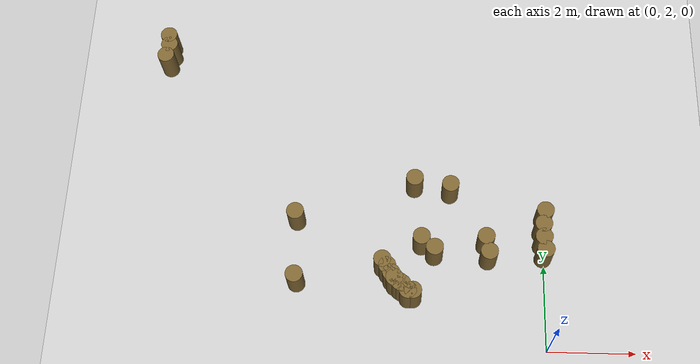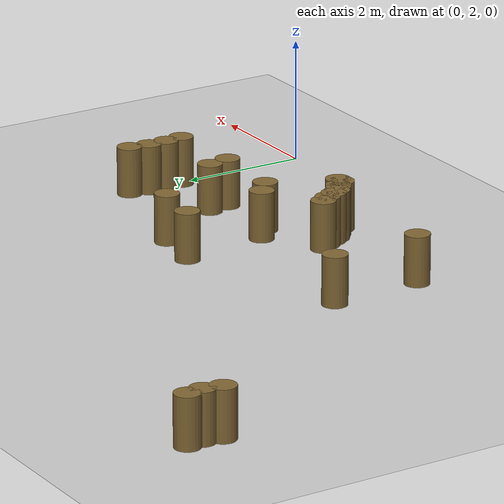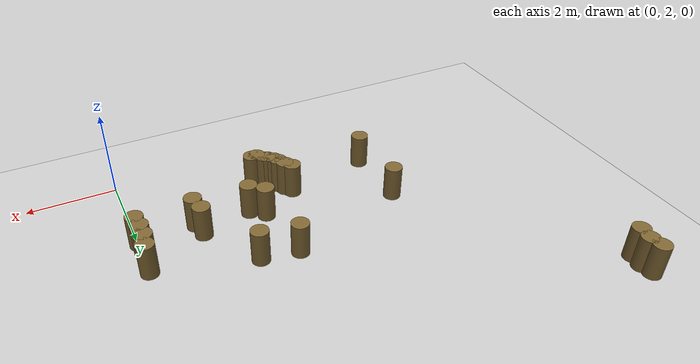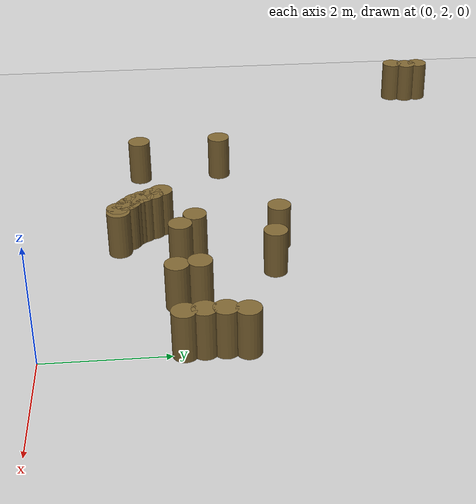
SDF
<sdf version="1.7">
 <world name="default">
  <model name="ground_plane">
   <static>1</static>
   <link name="link">
    <collision name="collision">
     <geometry><plane><normal>0 0 1</normal><size>100 100</size></plane></geometry>
     <surface><friction><ode><mu>100</mu><mu2>50</mu2></ode></friction></surface>
    </collision>
    <visual name="visual">
     <cast_shadows>0</cast_shadows>
     <geometry><plane><normal>0 0 1</normal><size>100 100</size></plane></geometry>
     <material>
      <script><uri>file://media/materials/scripts/gazebo.material</uri><name>Gazebo/Grey</name></script>
     </material>
    </visual>
   </link>
  </model>
  <model name="mini_cylinder_0_clone_0_clone_clone_clone_clone_13">
   <link name="link">
    <inertial>
     <mass>1</mass>
     <inertia><ixx>0.145833</ixx><ixy>0</ixy><ixz>0</ixz><iyy>0.145833</iyy><iyz>0</iyz><izz>0.125</izz></inertia>
    </inertial>
    <visual name="visual">
     <geometry><cylinder><radius>0.2</radius><length>0.8</length></cylinder></geometry>
     <material>
      <script><name>Gazebo/Grey</name><uri>file://media/materials/scripts/gazebo.material</uri></script>
      <shader type="vertex"><normal_map>__default__</normal_map></shader>
      <ambient>0.5 0.4 0.2 1</ambient>
      <diffuse>0.7 0.7 0.7 1</diffuse>
      <specular>0.01 0.01 0.01 1</specular>
      <emissive>0 0 0 1</emissive>
     </material>
    </visual>
    <collision name="collision">
     <geometry><cylinder><radius>0.2</radius><length>0.8</length></cylinder></geometry>
     <surface>
      <friction>
       <ode><mu>1</mu><mu2>1</mu2><fdir1>0 0 0</fdir1><slip1>0</slip1><slip2>0</slip2></ode>
       <torsional>
        <coefficient>1</coefficient>
        <patch_radius>0</patch_radius>
        <surface_radius>0</surface_radius>
        <use_patch_radius>1</use_patch_radius>
        <ode><slip>0</slip></ode>
       </torsional>
      </friction>
      <bounce><restitution_coefficient>0</restitution_coefficient><threshold>1e+06</threshold></bounce>
      <contact>
       <collide_without_contact>0</collide_without_contact>
       <collide_without_contact_bitmask>1</collide_without_contact_bitmask>
       <collide_bitmask>1</collide_bitmask>
       <ode>
        <soft_cfm>0</soft_cfm>
        <soft_erp>0.2</soft_erp>
        <kp>1e+13</kp>
        <kd>1</kd>
        <max_vel>0.01</max_vel>
        <min_depth>0</min_depth>
       </ode>
       <bullet>
        <split_impulse>1</split_impulse>
        <split_impulse_penetration_threshold>-0.01</split_impulse_penetration_threshold>
        <soft_cfm>0</soft_cfm>
        <soft_erp>0.2</soft_erp>
        <kp>1e+13</kp>
        <kd>1</kd>
       </bullet>
      </contact>
     </surface>
    </collision>
   </link>
   <static>1</static>
   <pose>-1.29879 4.10222 0.4 0 -0 0</pose>
  </model>
  <model name="mini_cylinder_0_clone_0_clone_clone_clone_clone_3_clone_20_clone_98">
   <link name="link">
    <inertial>
     <mass>1</mass>
     <inertia><ixx>0.145833</ixx><ixy>0</ixy><ixz>0</ixz><iyy>0.145833</iyy><iyz>0</iyz><izz>0.125</izz></inertia>
    </inertial>
    <visual name="visual">
     <geometry><cylinder><radius>0.2</radius><length>0.8</length></cylinder></geometry>
     <material>
      <script><name>Gazebo/Grey</name><uri>file://media/materials/scripts/gazebo.material</uri></script>
      <shader type="vertex"><normal_map>__default__</normal_map></shader>
      <ambient>0.5 0.4 0.2 1</ambient>
      <diffuse>0.7 0.7 0.7 1</diffuse>
      <specular>0.01 0.01 0.01 1</specular>
      <emissive>0 0 0 1</emissive>
     </material>
    </visual>
    <collision name="collision">
     <geometry><cylinder><radius>0.2</radius><length>0.8</length></cylinder></geometry>
     <surface>
      <friction>
       <ode><mu>1</mu><mu2>1</mu2><fdir1>0 0 0</fdir1><slip1>0</slip1><slip2>0</slip2></ode>
       <torsional>
        <coefficient>1</coefficient>
        <patch_radius>0</patch_radius>
        <surface_radius>0</surface_radius>
        <use_patch_radius>1</use_patch_radius>
        <ode><slip>0</slip></ode>
       </torsional>
      </friction>
      <bounce><restitution_coefficient>0</restitution_coefficient><threshold>1e+06</threshold></bounce>
      <contact>
       <collide_without_contact>0</collide_without_contact>
       <collide_without_contact_bitmask>1</collide_without_contact_bitmask>
       <collide_bitmask>1</collide_bitmask>
       <ode>
        <soft_cfm>0</soft_cfm>
        <soft_erp>0.2</soft_erp>
        <kp>1e+13</kp>
        <kd>1</kd>
        <max_vel>0.01</max_vel>
        <min_depth>0</min_depth>
       </ode>
       <bullet>
        <split_impulse>1</split_impulse>
        <split_impulse_penetration_threshold>-0.01</split_impulse_penetration_threshold>
        <soft_cfm>0</soft_cfm>
        <soft_erp>0.2</soft_erp>
        <kp>1e+13</kp>
        <kd>1</kd>
       </bullet>
      </contact>
     </surface>
    </collision>
   </link>
   <static>1</static>
   <pose>-9.11435 9.55868 0.4 0 -0 0</pose>
  </model>
  <model name="mini_cylinder_0_clone_0_clone_clone_clone_clone_3_clone_20_clone_99">
   <link name="link">
    <inertial>
     <mass>1</mass>
     <inertia><ixx>0.145833</ixx><ixy>0</ixy><ixz>0</ixz><iyy>0.145833</iyy><iyz>0</iyz><izz>0.125</izz></inertia>
    </inertial>
    <visual name="visual">
     <geometry><cylinder><radius>0.2</radius><length>0.8</length></cylinder></geometry>
     <material>
      <script><name>Gazebo/Grey</name><uri>file://media/materials/scripts/gazebo.material</uri></script>
      <shader type="vertex"><normal_map>__default__</normal_map></shader>
      <ambient>0.5 0.4 0.2 1</ambient>
      <diffuse>0.7 0.7 0.7 1</diffuse>
      <specular>0.01 0.01 0.01 1</specular>
      <emissive>0 0 0 1</emissive>
     </material>
    </visual>
    <collision name="collision">
     <geometry><cylinder><radius>0.2</radius><length>0.8</length></cylinder></geometry>
     <surface>
      <friction>
       <ode><mu>1</mu><mu2>1</mu2><fdir1>0 0 0</fdir1><slip1>0</slip1><slip2>0</slip2></ode>
       <torsional>
        <coefficient>1</coefficient>
        <patch_radius>0</patch_radius>
        <surface_radius>0</surface_radius>
        <use_patch_radius>1</use_patch_radius>
        <ode><slip>0</slip></ode>
       </torsional>
      </friction>
      <bounce><restitution_coefficient>0</restitution_coefficient><threshold>1e+06</threshold></bounce>
      <contact>
       <collide_without_contact>0</collide_without_contact>
       <collide_without_contact_bitmask>1</collide_without_contact_bitmask>
       <collide_bitmask>1</collide_bitmask>
       <ode>
        <soft_cfm>0</soft_cfm>
        <soft_erp>0.2</soft_erp>
        <kp>1e+13</kp>
        <kd>1</kd>
        <max_vel>0.01</max_vel>
        <min_depth>0</min_depth>
       </ode>
       <bullet>
        <split_impulse>1</split_impulse>
        <split_impulse_penetration_threshold>-0.01</split_impulse_penetration_threshold>
        <soft_cfm>0</soft_cfm>
        <soft_erp>0.2</soft_erp>
        <kp>1e+13</kp>
        <kd>1</kd>
       </bullet>
      </contact>
     </surface>
    </collision>
   </link>
   <static>1</static>
   <pose>-9.07853 9.29885 0.4 0 -0 0</pose>
  </model>
  <model name="mini_cylinder_0_clone_0_clone_clone_clone_clone_3_clone_20_clone_100">
   <link name="link">
    <inertial>
     <mass>1</mass>
     <inertia><ixx>0.145833</ixx><ixy>0</ixy><ixz>0</ixz><iyy>0.145833</iyy><iyz>0</iyz><izz>0.125</izz></inertia>
    </inertial>
    <visual name="visual">
     <geometry><cylinder><radius>0.2</radius><length>0.8</length></cylinder></geometry>
     <material>
      <script><name>Gazebo/Grey</name><uri>file://media/materials/scripts/gazebo.material</uri></script>
      <shader type="vertex"><normal_map>__default__</normal_map></shader>
      <ambient>0.5 0.4 0.2 1</ambient>
      <diffuse>0.7 0.7 0.7 1</diffuse>
      <specular>0.01 0.01 0.01 1</specular>
      <emissive>0 0 0 1</emissive>
     </material>
    </visual>
    <collision name="collision">
     <geometry><cylinder><radius>0.2</radius><length>0.8</length></cylinder></geometry>
     <surface>
      <friction>
       <ode><mu>1</mu><mu2>1</mu2><fdir1>0 0 0</fdir1><slip1>0</slip1><slip2>0</slip2></ode>
       <torsional>
        <coefficient>1</coefficient>
        <patch_radius>0</patch_radius>
        <surface_radius>0</surface_radius>
        <use_patch_radius>1</use_patch_radius>
        <ode><slip>0</slip></ode>
       </torsional>
      </friction>
      <bounce><restitution_coefficient>0</restitution_coefficient><threshold>1e+06</threshold></bounce>
      <contact>
       <collide_without_contact>0</collide_without_contact>
       <collide_without_contact_bitmask>1</collide_without_contact_bitmask>
       <collide_bitmask>1</collide_bitmask>
       <ode>
        <soft_cfm>0</soft_cfm>
        <soft_erp>0.2</soft_erp>
        <kp>1e+13</kp>
        <kd>1</kd>
        <max_vel>0.01</max_vel>
        <min_depth>0</min_depth>
       </ode>
       <bullet>
        <split_impulse>1</split_impulse>
        <split_impulse_penetration_threshold>-0.01</split_impulse_penetration_threshold>
        <soft_cfm>0</soft_cfm>
        <soft_erp>0.2</soft_erp>
        <kp>1e+13</kp>
        <kd>1</kd>
       </bullet>
      </contact>
     </surface>
    </collision>
   </link>
   <static>1</static>
   <pose>-9.13853 9.0047 0.4 0 -0 0</pose>
  </model>
  <model name="mini_cylinder_0_clone_0_clone_clone_clone_clone_clone_3">
   <link name="link">
    <inertial>
     <mass>1</mass>
     <inertia><ixx>0.145833</ixx><ixy>0</ixy><ixz>0</ixz><iyy>0.145833</iyy><iyz>0</iyz><izz>0.125</izz></inertia>
    </inertial>
    <visual name="visual">
     <geometry><cylinder><radius>0.2</radius><length>0.8</length></cylinder></geometry>
     <material>
      <script><name>Gazebo/Grey</name><uri>file://media/materials/scripts/gazebo.material</uri></script>
      <shader type="vertex"><normal_map>__default__</normal_map></shader>
      <ambient>0.5 0.4 0.2 1</ambient>
      <diffuse>0.7 0.7 0.7 1</diffuse>
      <specular>0.01 0.01 0.01 1</specular>
      <emissive>0 0 0 1</emissive>
     </material>
    </visual>
    <collision name="collision">
     <geometry><cylinder><radius>0.2</radius><length>0.8</length></cylinder></geometry>
     <surface>
      <friction>
       <ode><mu>1</mu><mu2>1</mu2><fdir1>0 0 0</fdir1><slip1>0</slip1><slip2>0</slip2></ode>
       <torsional>
        <coefficient>1</coefficient>
        <patch_radius>0</patch_radius>
        <surface_radius>0</surface_radius>
        <use_patch_radius>1</use_patch_radius>
        <ode><slip>0</slip></ode>
       </torsional>
      </friction>
      <bounce><restitution_coefficient>0</restitution_coefficient><threshold>1e+06</threshold></bounce>
      <contact>
       <collide_without_contact>0</collide_without_contact>
       <collide_without_contact_bitmask>1</collide_without_contact_bitmask>
       <collide_bitmask>1</collide_bitmask>
       <ode>
        <soft_cfm>0</soft_cfm>
        <soft_erp>0.2</soft_erp>
        <kp>1e+13</kp>
        <kd>1</kd>
        <max_vel>0.01</max_vel>
        <min_depth>0</min_depth>
       </ode>
       <bullet>
        <split_impulse>1</split_impulse>
        <split_impulse_penetration_threshold>-0.01</split_impulse_penetration_threshold>
        <soft_cfm>0</soft_cfm>
        <soft_erp>0.2</soft_erp>
        <kp>1e+13</kp>
        <kd>1</kd>
       </bullet>
      </contact>
     </surface>
    </collision>
   </link>
   <static>1</static>
   <pose>-0.006391 5.12583 0.4 0 -0 0</pose>
  </model>
  <model name="mini_cylinder_0_clone_0_clone_clone_clone_clone_clone_4">
   <link name="link">
    <inertial>
     <mass>1</mass>
     <inertia><ixx>0.145833</ixx><ixy>0</ixy><ixz>0</ixz><iyy>0.145833</iyy><iyz>0</iyz><izz>0.125</izz></inertia>
    </inertial>
    <visual name="visual">
     <geometry><cylinder><radius>0.2</radius><length>0.8</length></cylinder></geometry>
     <material>
      <script><name>Gazebo/Grey</name><uri>file://media/materials/scripts/gazebo.material</uri></script>
      <shader type="vertex"><normal_map>__default__</normal_map></shader>
      <ambient>0.5 0.4 0.2 1</ambient>
      <diffuse>0.7 0.7 0.7 1</diffuse>
      <specular>0.01 0.01 0.01 1</specular>
      <emissive>0 0 0 1</emissive>
     </material>
    </visual>
    <collision name="collision">
     <geometry><cylinder><radius>0.2</radius><length>0.8</length></cylinder></geometry>
     <surface>
      <friction>
       <ode><mu>1</mu><mu2>1</mu2><fdir1>0 0 0</fdir1><slip1>0</slip1><slip2>0</slip2></ode>
       <torsional>
        <coefficient>1</coefficient>
        <patch_radius>0</patch_radius>
        <surface_radius>0</surface_radius>
        <use_patch_radius>1</use_patch_radius>
        <ode><slip>0</slip></ode>
       </torsional>
      </friction>
      <bounce><restitution_coefficient>0</restitution_coefficient><threshold>1e+06</threshold></bounce>
      <contact>
       <collide_without_contact>0</collide_without_contact>
       <collide_without_contact_bitmask>1</collide_without_contact_bitmask>
       <collide_bitmask>1</collide_bitmask>
       <ode>
        <soft_cfm>0</soft_cfm>
        <soft_erp>0.2</soft_erp>
        <kp>1e+13</kp>
        <kd>1</kd>
        <max_vel>0.01</max_vel>
        <min_depth>0</min_depth>
       </ode>
       <bullet>
        <split_impulse>1</split_impulse>
        <split_impulse_penetration_threshold>-0.01</split_impulse_penetration_threshold>
        <soft_cfm>0</soft_cfm>
        <soft_erp>0.2</soft_erp>
        <kp>1e+13</kp>
        <kd>1</kd>
       </bullet>
      </contact>
     </surface>
    </collision>
   </link>
   <static>1</static>
   <pose>-0.053576 4.79537 0.4 0 -0 0</pose>
  </model>
  <model name="mini_cylinder_0_clone_0_clone_clone_clone_clone_clone_5">
   <link name="link">
    <inertial>
     <mass>1</mass>
     <inertia><ixx>0.145833</ixx><ixy>0</ixy><ixz>0</ixz><iyy>0.145833</iyy><iyz>0</iyz><izz>0.125</izz></inertia>
    </inertial>
    <visual name="visual">
     <geometry><cylinder><radius>0.2</radius><length>0.8</length></cylinder></geometry>
     <material>
      <script><name>Gazebo/Grey</name><uri>file://media/materials/scripts/gazebo.material</uri></script>
      <shader type="vertex"><normal_map>__default__</normal_map></shader>
      <ambient>0.5 0.4 0.2 1</ambient>
      <diffuse>0.7 0.7 0.7 1</diffuse>
      <specular>0.01 0.01 0.01 1</specular>
      <emissive>0 0 0 1</emissive>
     </material>
    </visual>
    <collision name="collision">
     <geometry><cylinder><radius>0.2</radius><length>0.8</length></cylinder></geometry>
     <surface>
      <friction>
       <ode><mu>1</mu><mu2>1</mu2><fdir1>0 0 0</fdir1><slip1>0</slip1><slip2>0</slip2></ode>
       <torsional>
        <coefficient>1</coefficient>
        <patch_radius>0</patch_radius>
        <surface_radius>0</surface_radius>
        <use_patch_radius>1</use_patch_radius>
        <ode><slip>0</slip></ode>
       </torsional>
      </friction>
      <bounce><restitution_coefficient>0</restitution_coefficient><threshold>1e+06</threshold></bounce>
      <contact>
       <collide_without_contact>0</collide_without_contact>
       <collide_without_contact_bitmask>1</collide_without_contact_bitmask>
       <collide_bitmask>1</collide_bitmask>
       <ode>
        <soft_cfm>0</soft_cfm>
        <soft_erp>0.2</soft_erp>
        <kp>1e+13</kp>
        <kd>1</kd>
        <max_vel>0.01</max_vel>
        <min_depth>0</min_depth>
       </ode>
       <bullet>
        <split_impulse>1</split_impulse>
        <split_impulse_penetration_threshold>-0.01</split_impulse_penetration_threshold>
        <soft_cfm>0</soft_cfm>
        <soft_erp>0.2</soft_erp>
        <kp>1e+13</kp>
        <kd>1</kd>
       </bullet>
      </contact>
     </surface>
    </collision>
   </link>
   <static>1</static>
   <pose>-0.053576 4.4808 0.4 0 -0 0</pose>
  </model>
  <model name="mini_cylinder_0_clone_0_clone_clone_clone_clone_clone_6">
   <link name="link">
    <inertial>
     <mass>1</mass>
     <inertia><ixx>0.145833</ixx><ixy>0</ixy><ixz>0</ixz><iyy>0.145833</iyy><iyz>0</iyz><izz>0.125</izz></inertia>
    </inertial>
    <visual name="visual">
     <geometry><cylinder><radius>0.2</radius><length>0.8</length></cylinder></geometry>
     <material>
      <script><name>Gazebo/Grey</name><uri>file://media/materials/scripts/gazebo.material</uri></script>
      <shader type="vertex"><normal_map>__default__</normal_map></shader>
      <ambient>0.5 0.4 0.2 1</ambient>
      <diffuse>0.7 0.7 0.7 1</diffuse>
      <specular>0.01 0.01 0.01 1</specular>
      <emissive>0 0 0 1</emissive>
     </material>
    </visual>
    <collision name="collision">
     <geometry><cylinder><radius>0.2</radius><length>0.8</length></cylinder></geometry>
     <surface>
      <friction>
       <ode><mu>1</mu><mu2>1</mu2><fdir1>0 0 0</fdir1><slip1>0</slip1><slip2>0</slip2></ode>
       <torsional>
        <coefficient>1</coefficient>
        <patch_radius>0</patch_radius>
        <surface_radius>0</surface_radius>
        <use_patch_radius>1</use_patch_radius>
        <ode><slip>0</slip></ode>
       </torsional>
      </friction>
      <bounce><restitution_coefficient>0</restitution_coefficient><threshold>1e+06</threshold></bounce>
      <contact>
       <collide_without_contact>0</collide_without_contact>
       <collide_without_contact_bitmask>1</collide_without_contact_bitmask>
       <collide_bitmask>1</collide_bitmask>
       <ode>
        <soft_cfm>0</soft_cfm>
        <soft_erp>0.2</soft_erp>
        <kp>1e+13</kp>
        <kd>1</kd>
        <max_vel>0.01</max_vel>
        <min_depth>0</min_depth>
       </ode>
       <bullet>
        <split_impulse>1</split_impulse>
        <split_impulse_penetration_threshold>-0.01</split_impulse_penetration_threshold>
        <soft_cfm>0</soft_cfm>
        <soft_erp>0.2</soft_erp>
        <kp>1e+13</kp>
        <kd>1</kd>
       </bullet>
      </contact>
     </surface>
    </collision>
   </link>
   <static>1</static>
   <pose>-0.022117 4.18196 0.4 0 -0 0</pose>
  </model>
  <model name="mini_cylinder_0_clone_0_clone_clone_clone_clone_clone_49">
   <link name="link">
    <inertial>
     <mass>1</mass>
     <inertia><ixx>0.145833</ixx><ixy>0</ixy><ixz>0</ixz><iyy>0.145833</iyy><iyz>0</iyz><izz>0.125</izz></inertia>
    </inertial>
    <visual name="visual">
     <geometry><cylinder><radius>0.2</radius><length>0.8</length></cylinder></geometry>
     <material>
      <script><name>Gazebo/Grey</name><uri>file://media/materials/scripts/gazebo.material</uri></script>
      <shader type="vertex"><normal_map>__default__</normal_map></shader>
      <ambient>0.5 0.4 0.2 1</ambient>
      <diffuse>0.7 0.7 0.7 1</diffuse>
      <specular>0.01 0.01 0.01 1</specular>
      <emissive>0 0 0 1</emissive>
     </material>
    </visual>
    <collision name="collision">
     <geometry><cylinder><radius>0.2</radius><length>0.8</length></cylinder></geometry>
     <surface>
      <friction>
       <ode><mu>1</mu><mu2>1</mu2><fdir1>0 0 0</fdir1><slip1>0</slip1><slip2>0</slip2></ode>
       <torsional>
        <coefficient>1</coefficient>
        <patch_radius>0</patch_radius>
        <surface_radius>0</surface_radius>
        <use_patch_radius>1</use_patch_radius>
        <ode><slip>0</slip></ode>
       </torsional>
      </friction>
      <bounce><restitution_coefficient>0</restitution_coefficient><threshold>1e+06</threshold></bounce>
      <contact>
       <collide_without_contact>0</collide_without_contact>
       <collide_without_contact_bitmask>1</collide_without_contact_bitmask>
       <collide_bitmask>1</collide_bitmask>
       <ode>
        <soft_cfm>0</soft_cfm>
        <soft_erp>0.2</soft_erp>
        <kp>1e+13</kp>
        <kd>1</kd>
        <max_vel>0.01</max_vel>
        <min_depth>0</min_depth>
       </ode>
       <bullet>
        <split_impulse>1</split_impulse>
        <split_impulse_penetration_threshold>-0.01</split_impulse_penetration_threshold>
        <soft_cfm>0</soft_cfm>
        <soft_erp>0.2</soft_erp>
        <kp>1e+13</kp>
        <kd>1</kd>
       </bullet>
      </contact>
     </surface>
    </collision>
   </link>
   <static>1</static>
   <pose>-2.53825 4.18156 0.4 0 -0 0</pose>
  </model>
  <model name="mini_cylinder_0_clone_0_clone_clone_clone_clone_clone_50">
   <link name="link">
    <inertial>
     <mass>1</mass>
     <inertia><ixx>0.145833</ixx><ixy>0</ixy><ixz>0</ixz><iyy>0.145833</iyy><iyz>0</iyz><izz>0.125</izz></inertia>
    </inertial>
    <visual name="visual">
     <geometry><cylinder><radius>0.2</radius><length>0.8</length></cylinder></geometry>
     <material>
      <script><name>Gazebo/Grey</name><uri>file://media/materials/scripts/gazebo.material</uri></script>
      <shader type="vertex"><normal_map>__default__</normal_map></shader>
      <ambient>0.5 0.4 0.2 1</ambient>
      <diffuse>0.7 0.7 0.7 1</diffuse>
      <specular>0.01 0.01 0.01 1</specular>
      <emissive>0 0 0 1</emissive>
     </material>
    </visual>
    <collision name="collision">
     <geometry><cylinder><radius>0.2</radius><length>0.8</length></cylinder></geometry>
     <surface>
      <friction>
       <ode><mu>1</mu><mu2>1</mu2><fdir1>0 0 0</fdir1><slip1>0</slip1><slip2>0</slip2></ode>
       <torsional>
        <coefficient>1</coefficient>
        <patch_radius>0</patch_radius>
        <surface_radius>0</surface_radius>
        <use_patch_radius>1</use_patch_radius>
        <ode><slip>0</slip></ode>
       </torsional>
      </friction>
      <bounce><restitution_coefficient>0</restitution_coefficient><threshold>1e+06</threshold></bounce>
      <contact>
       <collide_without_contact>0</collide_without_contact>
       <collide_without_contact_bitmask>1</collide_without_contact_bitmask>
       <collide_bitmask>1</collide_bitmask>
       <ode>
        <soft_cfm>0</soft_cfm>
        <soft_erp>0.2</soft_erp>
        <kp>1e+13</kp>
        <kd>1</kd>
        <max_vel>0.01</max_vel>
        <min_depth>0</min_depth>
       </ode>
       <bullet>
        <split_impulse>1</split_impulse>
        <split_impulse_penetration_threshold>-0.01</split_impulse_penetration_threshold>
        <soft_cfm>0</soft_cfm>
        <soft_erp>0.2</soft_erp>
        <kp>1e+13</kp>
        <kd>1</kd>
       </bullet>
      </contact>
     </surface>
    </collision>
   </link>
   <static>1</static>
   <pose>-2.83709 4.43321 0.4 0 -0 0</pose>
  </model>
  <model name="mini_cylinder_0_clone_0_clone_clone_clone_clone_clone_49_clone_0">
   <link name="link">
    <inertial>
     <mass>1</mass>
     <inertia><ixx>0.145833</ixx><ixy>0</ixy><ixz>0</ixz><iyy>0.145833</iyy><iyz>0</iyz><izz>0.125</izz></inertia>
    </inertial>
    <visual name="visual">
     <geometry><cylinder><radius>0.2</radius><length>0.8</length></cylinder></geometry>
     <material>
      <script><name>Gazebo/Grey</name><uri>file://media/materials/scripts/gazebo.material</uri></script>
      <shader type="vertex"><normal_map>__default__</normal_map></shader>
      <ambient>0.5 0.4 0.2 1</ambient>
      <diffuse>0.7 0.7 0.7 1</diffuse>
      <specular>0.01 0.01 0.01 1</specular>
      <emissive>0 0 0 1</emissive>
     </material>
    </visual>
    <collision name="collision">
     <geometry><cylinder><radius>0.2</radius><length>0.8</length></cylinder></geometry>
     <surface>
      <friction>
       <ode><mu>1</mu><mu2>1</mu2><fdir1>0 0 0</fdir1><slip1>0</slip1><slip2>0</slip2></ode>
       <torsional>
        <coefficient>1</coefficient>
        <patch_radius>0</patch_radius>
        <surface_radius>0</surface_radius>
        <use_patch_radius>1</use_patch_radius>
        <ode><slip>0</slip></ode>
       </torsional>
      </friction>
      <bounce><restitution_coefficient>0</restitution_coefficient><threshold>1e+06</threshold></bounce>
      <contact>
       <collide_without_contact>0</collide_without_contact>
       <collide_without_contact_bitmask>1</collide_without_contact_bitmask>
       <collide_bitmask>1</collide_bitmask>
       <ode>
        <soft_cfm>0</soft_cfm>
        <soft_erp>0.2</soft_erp>
        <kp>1e+13</kp>
        <kd>1</kd>
        <max_vel>0.01</max_vel>
        <min_depth>0</min_depth>
       </ode>
       <bullet>
        <split_impulse>1</split_impulse>
        <split_impulse_penetration_threshold>-0.01</split_impulse_penetration_threshold>
        <soft_cfm>0</soft_cfm>
        <soft_erp>0.2</soft_erp>
        <kp>1e+13</kp>
        <kd>1</kd>
       </bullet>
      </contact>
     </surface>
    </collision>
   </link>
   <static>1</static>
   <pose>-3.0174 3.15489 0.4 0 -0 0</pose>
  </model>
  <model name="mini_cylinder_0_clone_0_clone_clone_clone_clone_clone_49_clone_1">
   <link name="link">
    <inertial>
     <mass>1</mass>
     <inertia><ixx>0.145833</ixx><ixy>0</ixy><ixz>0</ixz><iyy>0.145833</iyy><iyz>0</iyz><izz>0.125</izz></inertia>
    </inertial>
    <visual name="visual">
     <geometry><cylinder><radius>0.2</radius><length>0.8</length></cylinder></geometry>
     <material>
      <script><name>Gazebo/Grey</name><uri>file://media/materials/scripts/gazebo.material</uri></script>
      <shader type="vertex"><normal_map>__default__</normal_map></shader>
      <ambient>0.5 0.4 0.2 1</ambient>
      <diffuse>0.7 0.7 0.7 1</diffuse>
      <specular>0.01 0.01 0.01 1</specular>
      <emissive>0 0 0 1</emissive>
     </material>
    </visual>
    <collision name="collision">
     <geometry><cylinder><radius>0.2</radius><length>0.8</length></cylinder></geometry>
     <surface>
      <friction>
       <ode><mu>1</mu><mu2>1</mu2><fdir1>0 0 0</fdir1><slip1>0</slip1><slip2>0</slip2></ode>
       <torsional>
        <coefficient>1</coefficient>
        <patch_radius>0</patch_radius>
        <surface_radius>0</surface_radius>
        <use_patch_radius>1</use_patch_radius>
        <ode><slip>0</slip></ode>
       </torsional>
      </friction>
      <bounce><restitution_coefficient>0</restitution_coefficient><threshold>1e+06</threshold></bounce>
      <contact>
       <collide_without_contact>0</collide_without_contact>
       <collide_without_contact_bitmask>1</collide_without_contact_bitmask>
       <collide_bitmask>1</collide_bitmask>
       <ode>
        <soft_cfm>0</soft_cfm>
        <soft_erp>0.2</soft_erp>
        <kp>1e+13</kp>
        <kd>1</kd>
        <max_vel>0.01</max_vel>
        <min_depth>0</min_depth>
       </ode>
       <bullet>
        <split_impulse>1</split_impulse>
        <split_impulse_penetration_threshold>-0.01</split_impulse_penetration_threshold>
        <soft_cfm>0</soft_cfm>
        <soft_erp>0.2</soft_erp>
        <kp>1e+13</kp>
        <kd>1</kd>
       </bullet>
      </contact>
     </surface>
    </collision>
   </link>
   <static>1</static>
   <pose>-3.26361 3.30636 0.4 0 -0 0</pose>
  </model>
  <model name="mini_cylinder_0_clone_0_clone_clone_clone_clone_clone_49_clone_2">
   <link name="link">
    <inertial>
     <mass>1</mass>
     <inertia><ixx>0.145833</ixx><ixy>0</ixy><ixz>0</ixz><iyy>0.145833</iyy><iyz>0</iyz><izz>0.125</izz></inertia>
    </inertial>
    <visual name="visual">
     <geometry><cylinder><radius>0.2</radius><length>0.8</length></cylinder></geometry>
     <material>
      <script><name>Gazebo/Grey</name><uri>file://media/materials/scripts/gazebo.material</uri></script>
      <shader type="vertex"><normal_map>__default__</normal_map></shader>
      <ambient>0.5 0.4 0.2 1</ambient>
      <diffuse>0.7 0.7 0.7 1</diffuse>
      <specular>0.01 0.01 0.01 1</specular>
      <emissive>0 0 0 1</emissive>
     </material>
    </visual>
    <collision name="collision">
     <geometry><cylinder><radius>0.2</radius><length>0.8</length></cylinder></geometry>
     <surface>
      <friction>
       <ode><mu>1</mu><mu2>1</mu2><fdir1>0 0 0</fdir1><slip1>0</slip1><slip2>0</slip2></ode>
       <torsional>
        <coefficient>1</coefficient>
        <patch_radius>0</patch_radius>
        <surface_radius>0</surface_radius>
        <use_patch_radius>1</use_patch_radius>
        <ode><slip>0</slip></ode>
       </torsional>
      </friction>
      <bounce><restitution_coefficient>0</restitution_coefficient><threshold>1e+06</threshold></bounce>
      <contact>
       <collide_without_contact>0</collide_without_contact>
       <collide_without_contact_bitmask>1</collide_without_contact_bitmask>
       <collide_bitmask>1</collide_bitmask>
       <ode>
        <soft_cfm>0</soft_cfm>
        <soft_erp>0.2</soft_erp>
        <kp>1e+13</kp>
        <kd>1</kd>
        <max_vel>0.01</max_vel>
        <min_depth>0</min_depth>
       </ode>
       <bullet>
        <split_impulse>1</split_impulse>
        <split_impulse_penetration_threshold>-0.01</split_impulse_penetration_threshold>
        <soft_cfm>0</soft_cfm>
        <soft_erp>0.2</soft_erp>
        <kp>1e+13</kp>
        <kd>1</kd>
       </bullet>
      </contact>
     </surface>
    </collision>
   </link>
   <static>1</static>
   <pose>-3.50982 3.55258 0.4 0 -0 0</pose>
  </model>
  <model name="mini_cylinder_0_clone_0_clone_clone_clone_clone_clone_49_clone_3">
   <link name="link">
    <inertial>
     <mass>1</mass>
     <inertia><ixx>0.145833</ixx><ixy>0</ixy><ixz>0</ixz><iyy>0.145833</iyy><iyz>0</iyz><izz>0.125</izz></inertia>
    </inertial>
    <visual name="visual">
     <geometry><cylinder><radius>0.2</radius><length>0.8</length></cylinder></geometry>
     <material>
      <script><name>Gazebo/Grey</name><uri>file://media/materials/scripts/gazebo.material</uri></script>
      <shader type="vertex"><normal_map>__default__</normal_map></shader>
      <ambient>0.5 0.4 0.2 1</ambient>
      <diffuse>0.7 0.7 0.7 1</diffuse>
      <specular>0.01 0.01 0.01 1</specular>
      <emissive>0 0 0 1</emissive>
     </material>
    </visual>
    <collision name="collision">
     <geometry><cylinder><radius>0.2</radius><length>0.8</length></cylinder></geometry>
     <surface>
      <friction>
       <ode><mu>1</mu><mu2>1</mu2><fdir1>0 0 0</fdir1><slip1>0</slip1><slip2>0</slip2></ode>
       <torsional>
        <coefficient>1</coefficient>
        <patch_radius>0</patch_radius>
        <surface_radius>0</surface_radius>
        <use_patch_radius>1</use_patch_radius>
        <ode><slip>0</slip></ode>
       </torsional>
      </friction>
      <bounce><restitution_coefficient>0</restitution_coefficient><threshold>1e+06</threshold></bounce>
      <contact>
       <collide_without_contact>0</collide_without_contact>
       <collide_without_contact_bitmask>1</collide_without_contact_bitmask>
       <collide_bitmask>1</collide_bitmask>
       <ode>
        <soft_cfm>0</soft_cfm>
        <soft_erp>0.2</soft_erp>
        <kp>1e+13</kp>
        <kd>1</kd>
        <max_vel>0.01</max_vel>
        <min_depth>0</min_depth>
       </ode>
       <bullet>
        <split_impulse>1</split_impulse>
        <split_impulse_penetration_threshold>-0.01</split_impulse_penetration_threshold>
        <soft_cfm>0</soft_cfm>
        <soft_erp>0.2</soft_erp>
        <kp>1e+13</kp>
        <kd>1</kd>
       </bullet>
      </contact>
     </surface>
    </collision>
   </link>
   <static>1</static>
   <pose>-3.6045 3.72304 0.4 0 -0 0</pose>
  </model>
  <model name="mini_cylinder_0_clone_0_clone_clone_clone_clone_clone_49_clone_4">
   <link name="link">
    <inertial>
     <mass>1</mass>
     <inertia><ixx>0.145833</ixx><ixy>0</ixy><ixz>0</ixz><iyy>0.145833</iyy><iyz>0</iyz><izz>0.125</izz></inertia>
    </inertial>
    <visual name="visual">
     <geometry><cylinder><radius>0.2</radius><length>0.8</length></cylinder></geometry>
     <material>
      <script><name>Gazebo/Grey</name><uri>file://media/materials/scripts/gazebo.material</uri></script>
      <shader type="vertex"><normal_map>__default__</normal_map></shader>
      <ambient>0.5 0.4 0.2 1</ambient>
      <diffuse>0.7 0.7 0.7 1</diffuse>
      <specular>0.01 0.01 0.01 1</specular>
      <emissive>0 0 0 1</emissive>
     </material>
    </visual>
    <collision name="collision">
     <geometry><cylinder><radius>0.2</radius><length>0.8</length></cylinder></geometry>
     <surface>
      <friction>
       <ode><mu>1</mu><mu2>1</mu2><fdir1>0 0 0</fdir1><slip1>0</slip1><slip2>0</slip2></ode>
       <torsional>
        <coefficient>1</coefficient>
        <patch_radius>0</patch_radius>
        <surface_radius>0</surface_radius>
        <use_patch_radius>1</use_patch_radius>
        <ode><slip>0</slip></ode>
       </torsional>
      </friction>
      <bounce><restitution_coefficient>0</restitution_coefficient><threshold>1e+06</threshold></bounce>
      <contact>
       <collide_without_contact>0</collide_without_contact>
       <collide_without_contact_bitmask>1</collide_without_contact_bitmask>
       <collide_bitmask>1</collide_bitmask>
       <ode>
        <soft_cfm>0</soft_cfm>
        <soft_erp>0.2</soft_erp>
        <kp>1e+13</kp>
        <kd>1</kd>
        <max_vel>0.01</max_vel>
        <min_depth>0</min_depth>
       </ode>
       <bullet>
        <split_impulse>1</split_impulse>
        <split_impulse_penetration_threshold>-0.01</split_impulse_penetration_threshold>
        <soft_cfm>0</soft_cfm>
        <soft_erp>0.2</soft_erp>
        <kp>1e+13</kp>
        <kd>1</kd>
       </bullet>
      </contact>
     </surface>
    </collision>
   </link>
   <static>1</static>
   <pose>-3.43404 3.43895 0.4 0 -0 0</pose>
  </model>
  <model name="mini_cylinder_0_clone_0_clone_clone_clone_clone_clone_49_clone_5">
   <link name="link">
    <inertial>
     <mass>1</mass>
     <inertia><ixx>0.145833</ixx><ixy>0</ixy><ixz>0</ixz><iyy>0.145833</iyy><iyz>0</iyz><izz>0.125</izz></inertia>
    </inertial>
    <visual name="visual">
     <geometry><cylinder><radius>0.2</radius><length>0.8</length></cylinder></geometry>
     <material>
      <script><name>Gazebo/Grey</name><uri>file://media/materials/scripts/gazebo.material</uri></script>
      <shader type="vertex"><normal_map>__default__</normal_map></shader>
      <ambient>0.5 0.4 0.2 1</ambient>
      <diffuse>0.7 0.7 0.7 1</diffuse>
      <specular>0.01 0.01 0.01 1</specular>
      <emissive>0 0 0 1</emissive>
     </material>
    </visual>
    <collision name="collision">
     <geometry><cylinder><radius>0.2</radius><length>0.8</length></cylinder></geometry>
     <surface>
      <friction>
       <ode><mu>1</mu><mu2>1</mu2><fdir1>0 0 0</fdir1><slip1>0</slip1><slip2>0</slip2></ode>
       <torsional>
        <coefficient>1</coefficient>
        <patch_radius>0</patch_radius>
        <surface_radius>0</surface_radius>
        <use_patch_radius>1</use_patch_radius>
        <ode><slip>0</slip></ode>
       </torsional>
      </friction>
      <bounce><restitution_coefficient>0</restitution_coefficient><threshold>1e+06</threshold></bounce>
      <contact>
       <collide_without_contact>0</collide_without_contact>
       <collide_without_contact_bitmask>1</collide_without_contact_bitmask>
       <collide_bitmask>1</collide_bitmask>
       <ode>
        <soft_cfm>0</soft_cfm>
        <soft_erp>0.2</soft_erp>
        <kp>1e+13</kp>
        <kd>1</kd>
        <max_vel>0.01</max_vel>
        <min_depth>0</min_depth>
       </ode>
       <bullet>
        <split_impulse>1</split_impulse>
        <split_impulse_penetration_threshold>-0.01</split_impulse_penetration_threshold>
        <soft_cfm>0</soft_cfm>
        <soft_erp>0.2</soft_erp>
        <kp>1e+13</kp>
        <kd>1</kd>
       </bullet>
      </contact>
     </surface>
    </collision>
   </link>
   <static>1</static>
   <pose>-3.32043 3.34426 0.4 0 -0 0</pose>
  </model>
  <model name="mini_cylinder_0_clone_0_clone_clone_clone_clone_clone_49_clone_6">
   <link name="link">
    <inertial>
     <mass>1</mass>
     <inertia><ixx>0.145833</ixx><ixy>0</ixy><ixz>0</ixz><iyy>0.145833</iyy><iyz>0</iyz><izz>0.125</izz></inertia>
    </inertial>
    <visual name="visual">
     <geometry><cylinder><radius>0.2</radius><length>0.8</length></cylinder></geometry>
     <material>
      <script><name>Gazebo/Grey</name><uri>file://media/materials/scripts/gazebo.material</uri></script>
      <shader type="vertex"><normal_map>__default__</normal_map></shader>
      <ambient>0.5 0.4 0.2 1</ambient>
      <diffuse>0.7 0.7 0.7 1</diffuse>
      <specular>0.01 0.01 0.01 1</specular>
      <emissive>0 0 0 1</emissive>
     </material>
    </visual>
    <collision name="collision">
     <geometry><cylinder><radius>0.2</radius><length>0.8</length></cylinder></geometry>
     <surface>
      <friction>
       <ode><mu>1</mu><mu2>1</mu2><fdir1>0 0 0</fdir1><slip1>0</slip1><slip2>0</slip2></ode>
       <torsional>
        <coefficient>1</coefficient>
        <patch_radius>0</patch_radius>
        <surface_radius>0</surface_radius>
        <use_patch_radius>1</use_patch_radius>
        <ode><slip>0</slip></ode>
       </torsional>
      </friction>
      <bounce><restitution_coefficient>0</restitution_coefficient><threshold>1e+06</threshold></bounce>
      <contact>
       <collide_without_contact>0</collide_without_contact>
       <collide_without_contact_bitmask>1</collide_without_contact_bitmask>
       <collide_bitmask>1</collide_bitmask>
       <ode>
        <soft_cfm>0</soft_cfm>
        <soft_erp>0.2</soft_erp>
        <kp>1e+13</kp>
        <kd>1</kd>
        <max_vel>0.01</max_vel>
        <min_depth>0</min_depth>
       </ode>
       <bullet>
        <split_impulse>1</split_impulse>
        <split_impulse_penetration_threshold>-0.01</split_impulse_penetration_threshold>
        <soft_cfm>0</soft_cfm>
        <soft_erp>0.2</soft_erp>
        <kp>1e+13</kp>
        <kd>1</kd>
       </bullet>
      </contact>
     </surface>
    </collision>
   </link>
   <static>1</static>
   <pose>-3.13102 3.15489 0.4 0 -0 0</pose>
  </model>
  <model name="mini_cylinder_0_clone_0_clone_clone_clone_clone_clone_49_clone_8">
   <link name="link">
    <inertial>
     <mass>1</mass>
     <inertia><ixx>0.145833</ixx><ixy>0</ixy><ixz>0</ixz><iyy>0.145833</iyy><iyz>0</iyz><izz>0.125</izz></inertia>
    </inertial>
    <visual name="visual">
     <geometry><cylinder><radius>0.2</radius><length>0.8</length></cylinder></geometry>
     <material>
      <script><name>Gazebo/Grey</name><uri>file://media/materials/scripts/gazebo.material</uri></script>
      <shader type="vertex"><normal_map>__default__</normal_map></shader>
      <ambient>0.5 0.4 0.2 1</ambient>
      <diffuse>0.7 0.7 0.7 1</diffuse>
      <specular>0.01 0.01 0.01 1</specular>
      <emissive>0 0 0 1</emissive>
     </material>
    </visual>
    <collision name="collision">
     <geometry><cylinder><radius>0.2</radius><length>0.8</length></cylinder></geometry>
     <surface>
      <friction>
       <ode><mu>1</mu><mu2>1</mu2><fdir1>0 0 0</fdir1><slip1>0</slip1><slip2>0</slip2></ode>
       <torsional>
        <coefficient>1</coefficient>
        <patch_radius>0</patch_radius>
        <surface_radius>0</surface_radius>
        <use_patch_radius>1</use_patch_radius>
        <ode><slip>0</slip></ode>
       </torsional>
      </friction>
      <bounce><restitution_coefficient>0</restitution_coefficient><threshold>1e+06</threshold></bounce>
      <contact>
       <collide_without_contact>0</collide_without_contact>
       <collide_without_contact_bitmask>1</collide_without_contact_bitmask>
       <collide_bitmask>1</collide_bitmask>
       <ode>
        <soft_cfm>0</soft_cfm>
        <soft_erp>0.2</soft_erp>
        <kp>1e+13</kp>
        <kd>1</kd>
        <max_vel>0.01</max_vel>
        <min_depth>0</min_depth>
       </ode>
       <bullet>
        <split_impulse>1</split_impulse>
        <split_impulse_penetration_threshold>-0.01</split_impulse_penetration_threshold>
        <soft_cfm>0</soft_cfm>
        <soft_erp>0.2</soft_erp>
        <kp>1e+13</kp>
        <kd>1</kd>
       </bullet>
      </contact>
     </surface>
    </collision>
   </link>
   <static>1</static>
   <pose>-3.71812 3.87455 0.4 0 -0 0</pose>
  </model>
  <model name="mini_cylinder_0_clone_0_clone_clone_clone_clone_clone_49_clone_56">
   <link name="link">
    <inertial>
     <mass>1</mass>
     <inertia><ixx>0.145833</ixx><ixy>0</ixy><ixz>0</ixz><iyy>0.145833</iyy><iyz>0</iyz><izz>0.125</izz></inertia>
    </inertial>
    <visual name="visual">
     <geometry><cylinder><radius>0.2</radius><length>0.8</length></cylinder></geometry>
     <material>
      <script><name>Gazebo/Grey</name><uri>file://media/materials/scripts/gazebo.material</uri></script>
      <shader type="vertex"><normal_map>__default__</normal_map></shader>
      <ambient>0.5 0.4 0.2 1</ambient>
      <diffuse>0.7 0.7 0.7 1</diffuse>
      <specular>0.01 0.01 0.01 1</specular>
      <emissive>0 0 0 1</emissive>
     </material>
    </visual>
    <collision name="collision">
     <geometry><cylinder><radius>0.2</radius><length>0.8</length></cylinder></geometry>
     <surface>
      <friction>
       <ode><mu>1</mu><mu2>1</mu2><fdir1>0 0 0</fdir1><slip1>0</slip1><slip2>0</slip2></ode>
       <torsional>
        <coefficient>1</coefficient>
        <patch_radius>0</patch_radius>
        <surface_radius>0</surface_radius>
        <use_patch_radius>1</use_patch_radius>
        <ode><slip>0</slip></ode>
       </torsional>
      </friction>
      <bounce><restitution_coefficient>0</restitution_coefficient><threshold>1e+06</threshold></bounce>
      <contact>
       <collide_without_contact>0</collide_without_contact>
       <collide_without_contact_bitmask>1</collide_without_contact_bitmask>
       <collide_bitmask>1</collide_bitmask>
       <ode>
        <soft_cfm>0</soft_cfm>
        <soft_erp>0.2</soft_erp>
        <kp>1e+13</kp>
        <kd>1</kd>
        <max_vel>0.01</max_vel>
        <min_depth>0</min_depth>
       </ode>
       <bullet>
        <split_impulse>1</split_impulse>
        <split_impulse_penetration_threshold>-0.01</split_impulse_penetration_threshold>
        <soft_cfm>0</soft_cfm>
        <soft_erp>0.2</soft_erp>
        <kp>1e+13</kp>
        <kd>1</kd>
       </bullet>
      </contact>
     </surface>
    </collision>
   </link>
   <static>1</static>
   <pose>-1.36758 4.46663 0.4 0 -0 0</pose>
  </model>
  <model name="mini_cylinder_0_clone_0_clone_clone_clone_clone_clone_49_clone_57">
   <link name="link">
    <inertial>
     <mass>1</mass>
     <inertia><ixx>0.145833</ixx><ixy>0</ixy><ixz>0</ixz><iyy>0.145833</iyy><iyz>0</iyz><izz>0.125</izz></inertia>
    </inertial>
    <visual name="visual">
     <geometry><cylinder><radius>0.2</radius><length>0.8</length></cylinder></geometry>
     <material>
      <script><name>Gazebo/Grey</name><uri>file://media/materials/scripts/gazebo.material</uri></script>
      <shader type="vertex"><normal_map>__default__</normal_map></shader>
      <ambient>0.5 0.4 0.2 1</ambient>
      <diffuse>0.7 0.7 0.7 1</diffuse>
      <specular>0.01 0.01 0.01 1</specular>
      <emissive>0 0 0 1</emissive>
     </material>
    </visual>
    <collision name="collision">
     <geometry><cylinder><radius>0.2</radius><length>0.8</length></cylinder></geometry>
     <surface>
      <friction>
       <ode><mu>1</mu><mu2>1</mu2><fdir1>0 0 0</fdir1><slip1>0</slip1><slip2>0</slip2></ode>
       <torsional>
        <coefficient>1</coefficient>
        <patch_radius>0</patch_radius>
        <surface_radius>0</surface_radius>
        <use_patch_radius>1</use_patch_radius>
        <ode><slip>0</slip></ode>
       </torsional>
      </friction>
      <bounce><restitution_coefficient>0</restitution_coefficient><threshold>1e+06</threshold></bounce>
      <contact>
       <collide_without_contact>0</collide_without_contact>
       <collide_without_contact_bitmask>1</collide_without_contact_bitmask>
       <collide_bitmask>1</collide_bitmask>
       <ode>
        <soft_cfm>0</soft_cfm>
        <soft_erp>0.2</soft_erp>
        <kp>1e+13</kp>
        <kd>1</kd>
        <max_vel>0.01</max_vel>
        <min_depth>0</min_depth>
       </ode>
       <bullet>
        <split_impulse>1</split_impulse>
        <split_impulse_penetration_threshold>-0.01</split_impulse_penetration_threshold>
        <soft_cfm>0</soft_cfm>
        <soft_erp>0.2</soft_erp>
        <kp>1e+13</kp>
        <kd>1</kd>
       </bullet>
      </contact>
     </surface>
    </collision>
   </link>
   <static>1</static>
   <pose>-2.17958 5.73413 0.4 0 -0 0</pose>
  </model>
  <model name="mini_cylinder_0_clone_0_clone_clone_clone_clone_clone_49_clone_58">
   <link name="link">
    <inertial>
     <mass>1</mass>
     <inertia><ixx>0.145833</ixx><ixy>0</ixy><ixz>0</ixz><iyy>0.145833</iyy><iyz>0</iyz><izz>0.125</izz></inertia>
    </inertial>
    <visual name="visual">
     <geometry><cylinder><radius>0.2</radius><length>0.8</length></cylinder></geometry>
     <material>
      <script><name>Gazebo/Grey</name><uri>file://media/materials/scripts/gazebo.material</uri></script>
      <shader type="vertex"><normal_map>__default__</normal_map></shader>
      <ambient>0.5 0.4 0.2 1</ambient>
      <diffuse>0.7 0.7 0.7 1</diffuse>
      <specular>0.01 0.01 0.01 1</specular>
      <emissive>0 0 0 1</emissive>
     </material>
    </visual>
    <collision name="collision">
     <geometry><cylinder><radius>0.2</radius><length>0.8</length></cylinder></geometry>
     <surface>
      <friction>
       <ode><mu>1</mu><mu2>1</mu2><fdir1>0 0 0</fdir1><slip1>0</slip1><slip2>0</slip2></ode>
       <torsional>
        <coefficient>1</coefficient>
        <patch_radius>0</patch_radius>
        <surface_radius>0</surface_radius>
        <use_patch_radius>1</use_patch_radius>
        <ode><slip>0</slip></ode>
       </torsional>
      </friction>
      <bounce><restitution_coefficient>0</restitution_coefficient><threshold>1e+06</threshold></bounce>
      <contact>
       <collide_without_contact>0</collide_without_contact>
       <collide_without_contact_bitmask>1</collide_without_contact_bitmask>
       <collide_bitmask>1</collide_bitmask>
       <ode>
        <soft_cfm>0</soft_cfm>
        <soft_erp>0.2</soft_erp>
        <kp>1e+13</kp>
        <kd>1</kd>
        <max_vel>0.01</max_vel>
        <min_depth>0</min_depth>
       </ode>
       <bullet>
        <split_impulse>1</split_impulse>
        <split_impulse_penetration_threshold>-0.01</split_impulse_penetration_threshold>
        <soft_cfm>0</soft_cfm>
        <soft_erp>0.2</soft_erp>
        <kp>1e+13</kp>
        <kd>1</kd>
       </bullet>
      </contact>
     </surface>
    </collision>
   </link>
   <static>1</static>
   <pose>-3.01137 5.87276 0.4 0 -0 0</pose>
  </model>
  <model name="mini_cylinder_0_clone_0_clone_clone_clone_clone_clone_49_clone_59">
   <link name="link">
    <inertial>
     <mass>1</mass>
     <inertia><ixx>0.145833</ixx><ixy>0</ixy><ixz>0</ixz><iyy>0.145833</iyy><iyz>0</iyz><izz>0.125</izz></inertia>
    </inertial>
    <visual name="visual">
     <geometry><cylinder><radius>0.2</radius><length>0.8</length></cylinder></geometry>
     <material>
      <script><name>Gazebo/Grey</name><uri>file://media/materials/scripts/gazebo.material</uri></script>
      <shader type="vertex"><normal_map>__default__</normal_map></shader>
      <ambient>0.5 0.4 0.2 1</ambient>
      <diffuse>0.7 0.7 0.7 1</diffuse>
      <specular>0.01 0.01 0.01 1</specular>
      <emissive>0 0 0 1</emissive>
     </material>
    </visual>
    <collision name="collision">
     <geometry><cylinder><radius>0.2</radius><length>0.8</length></cylinder></geometry>
     <surface>
      <friction>
       <ode><mu>1</mu><mu2>1</mu2><fdir1>0 0 0</fdir1><slip1>0</slip1><slip2>0</slip2></ode>
       <torsional>
        <coefficient>1</coefficient>
        <patch_radius>0</patch_radius>
        <surface_radius>0</surface_radius>
        <use_patch_radius>1</use_patch_radius>
        <ode><slip>0</slip></ode>
       </torsional>
      </friction>
      <bounce><restitution_coefficient>0</restitution_coefficient><threshold>1e+06</threshold></bounce>
      <contact>
       <collide_without_contact>0</collide_without_contact>
       <collide_without_contact_bitmask>1</collide_without_contact_bitmask>
       <collide_bitmask>1</collide_bitmask>
       <ode>
        <soft_cfm>0</soft_cfm>
        <soft_erp>0.2</soft_erp>
        <kp>1e+13</kp>
        <kd>1</kd>
        <max_vel>0.01</max_vel>
        <min_depth>0</min_depth>
       </ode>
       <bullet>
        <split_impulse>1</split_impulse>
        <split_impulse_penetration_threshold>-0.01</split_impulse_penetration_threshold>
        <soft_cfm>0</soft_cfm>
        <soft_erp>0.2</soft_erp>
        <kp>1e+13</kp>
        <kd>1</kd>
       </bullet>
      </contact>
     </surface>
    </collision>
   </link>
   <static>1</static>
   <pose>-5.74442 4.98156 0.4 0 -0 0</pose>
  </model>
  <model name="mini_cylinder_0_clone_0_clone_clone_clone_clone_clone_49_clone_60">
   <link name="link">
    <inertial>
     <mass>1</mass>
     <inertia><ixx>0.145833</ixx><ixy>0</ixy><ixz>0</ixz><iyy>0.145833</iyy><iyz>0</iyz><izz>0.125</izz></inertia>
    </inertial>
    <visual name="visual">
     <geometry><cylinder><radius>0.2</radius><length>0.8</length></cylinder></geometry>
     <material>
      <script><name>Gazebo/Grey</name><uri>file://media/materials/scripts/gazebo.material</uri></script>
      <shader type="vertex"><normal_map>__default__</normal_map></shader>
      <ambient>0.5 0.4 0.2 1</ambient>
      <diffuse>0.7 0.7 0.7 1</diffuse>
      <specular>0.01 0.01 0.01 1</specular>
      <emissive>0 0 0 1</emissive>
     </material>
    </visual>
    <collision name="collision">
     <geometry><cylinder><radius>0.2</radius><length>0.8</length></cylinder></geometry>
     <surface>
      <friction>
       <ode><mu>1</mu><mu2>1</mu2><fdir1>0 0 0</fdir1><slip1>0</slip1><slip2>0</slip2></ode>
       <torsional>
        <coefficient>1</coefficient>
        <patch_radius>0</patch_radius>
        <surface_radius>0</surface_radius>
        <use_patch_radius>1</use_patch_radius>
        <ode><slip>0</slip></ode>
       </torsional>
      </friction>
      <bounce><restitution_coefficient>0</restitution_coefficient><threshold>1e+06</threshold></bounce>
      <contact>
       <collide_without_contact>0</collide_without_contact>
       <collide_without_contact_bitmask>1</collide_without_contact_bitmask>
       <collide_bitmask>1</collide_bitmask>
       <ode>
        <soft_cfm>0</soft_cfm>
        <soft_erp>0.2</soft_erp>
        <kp>1e+13</kp>
        <kd>1</kd>
        <max_vel>0.01</max_vel>
        <min_depth>0</min_depth>
       </ode>
       <bullet>
        <split_impulse>1</split_impulse>
        <split_impulse_penetration_threshold>-0.01</split_impulse_penetration_threshold>
        <soft_cfm>0</soft_cfm>
        <soft_erp>0.2</soft_erp>
        <kp>1e+13</kp>
        <kd>1</kd>
       </bullet>
      </contact>
     </surface>
    </collision>
   </link>
   <static>1</static>
   <pose>-5.68501 3.4764 0.4 0 -0 0</pose>
  </model>
 </world>
</sdf>
